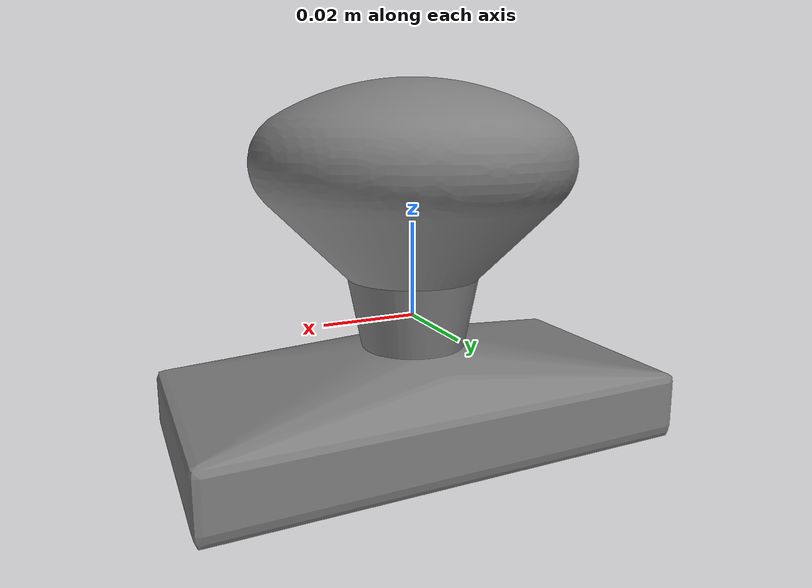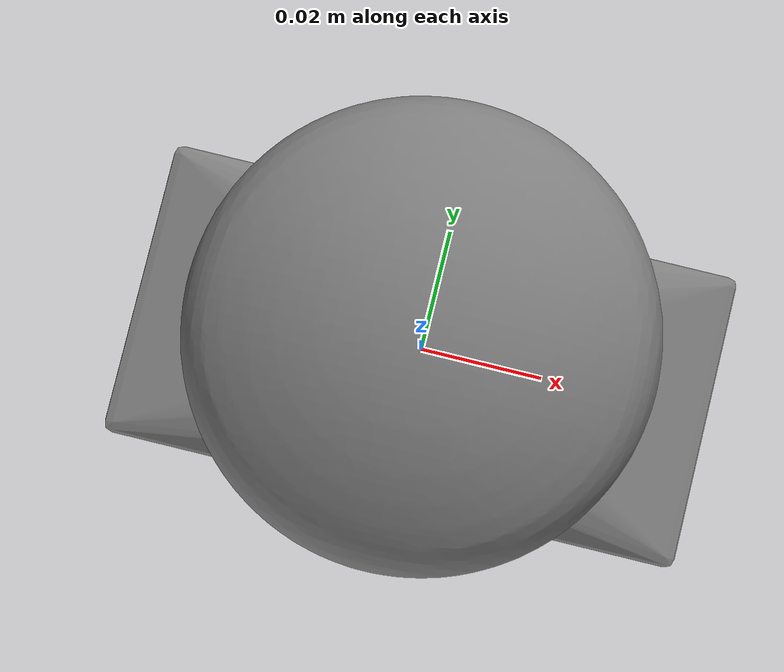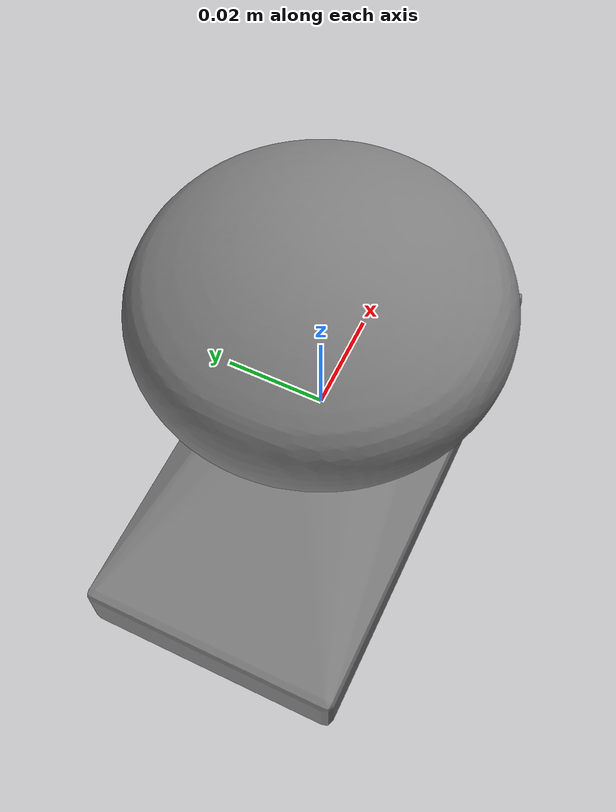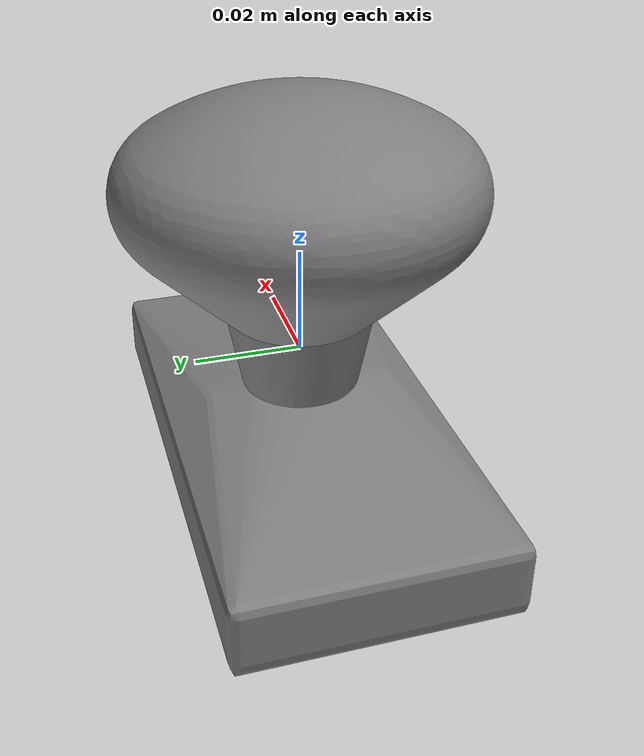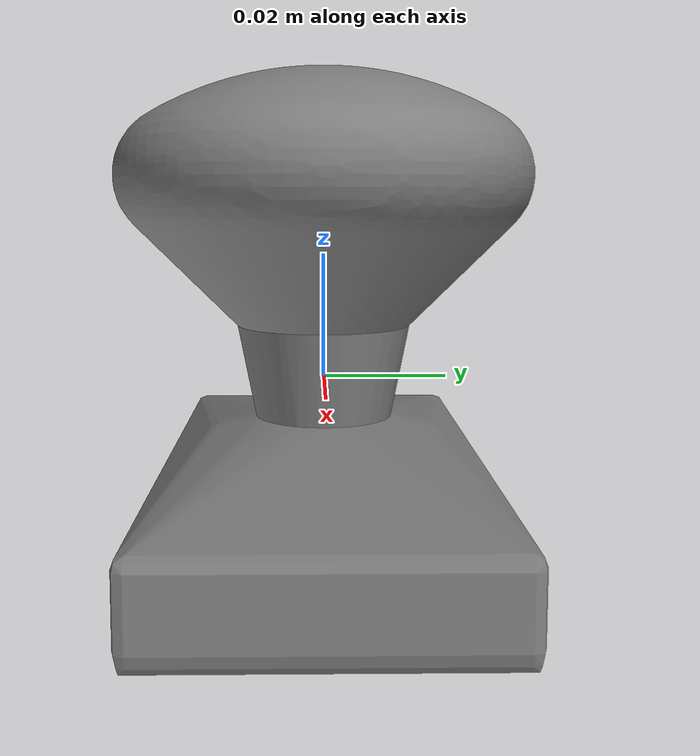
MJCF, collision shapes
<mujoco model="door_knob">
  <compiler meshdir="."/>

  <asset>
    <mesh name="door_knob" file="door_knob.stl"/>
    <mesh name="door_knob_collision_hull_000" file="door_knob_collision_hull_000.stl"/>
    <mesh name="door_knob_collision_hull_001" file="door_knob_collision_hull_001.stl"/>
    <mesh name="door_knob_collision_hull_002" file="door_knob_collision_hull_002.stl"/>
  </asset>

  <worldbody>
    <body name="object">
      <freejoint name="object_joint"/>
      <geom name="object_visual" type="mesh" mesh="door_knob"
            contype="0" conaffinity="0" group="2" rgba="0.9 0.9 0.8 1" mass="0"/>
      <geom name="door_knob_collision_hull_000_collision" type="mesh" mesh="door_knob_collision_hull_000"
            mass="0.0167" condim="6" friction="1.0 0.002 0.002" priority="1"/>
      <geom name="door_knob_collision_hull_001_collision" type="mesh" mesh="door_knob_collision_hull_001"
            mass="0.0167" condim="6" friction="1.0 0.002 0.002" priority="1"/>
      <geom name="door_knob_collision_hull_002_collision" type="mesh" mesh="door_knob_collision_hull_002"
            mass="0.0167" condim="6" friction="1.0 0.002 0.002" priority="1"/>
    </body>
  </worldbody>
</mujoco>
